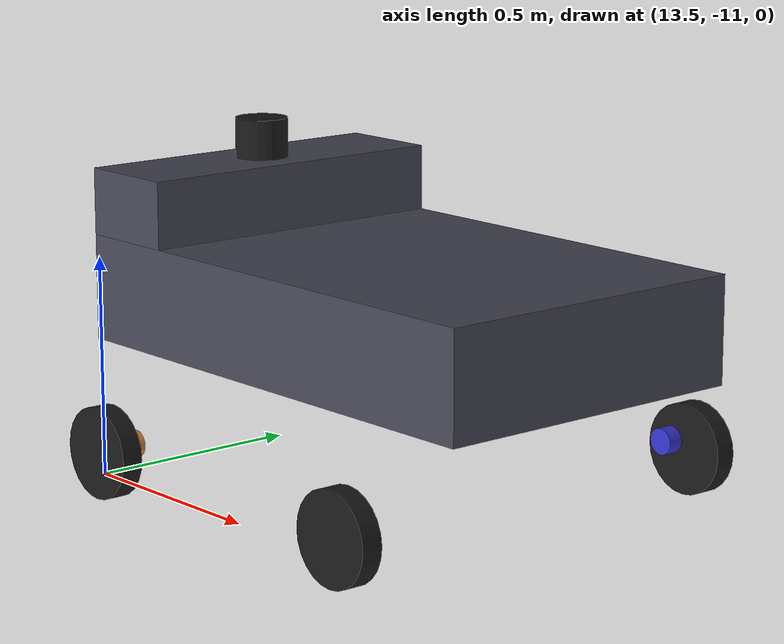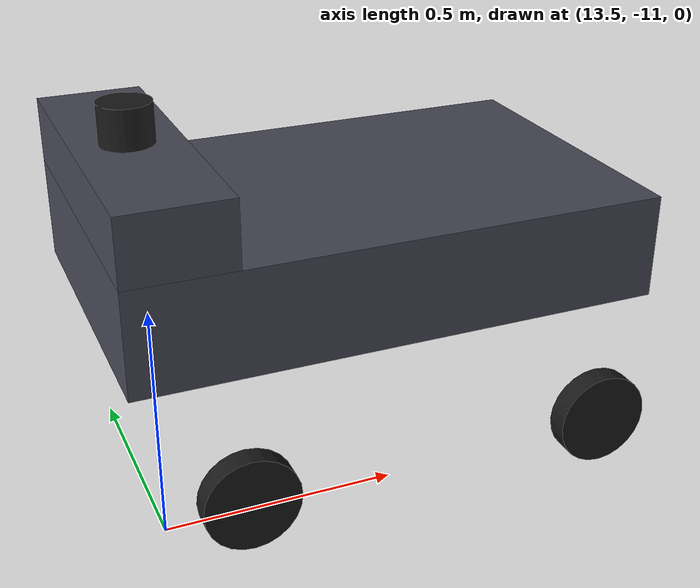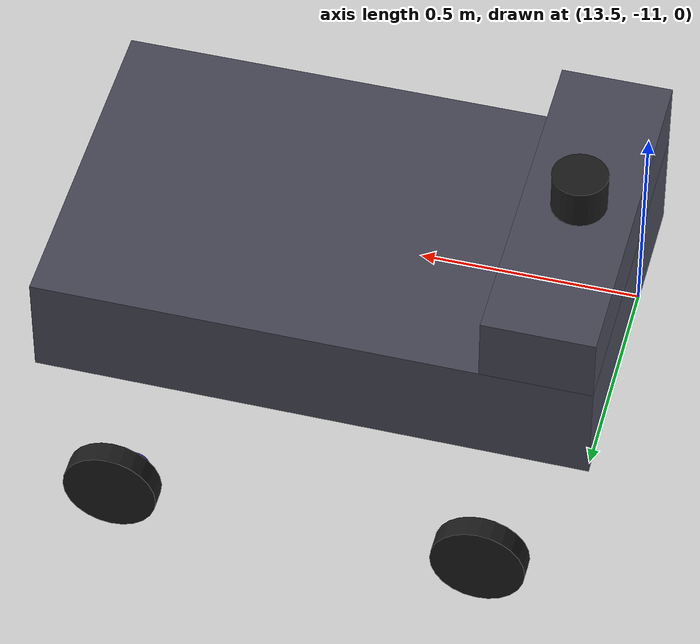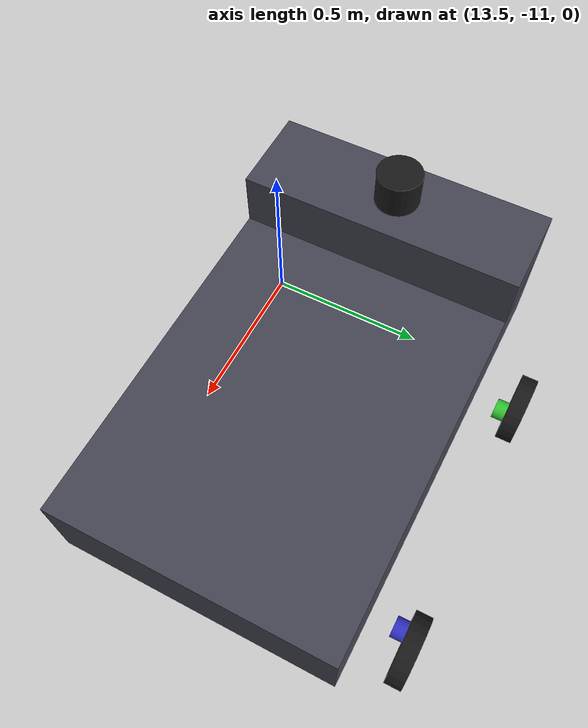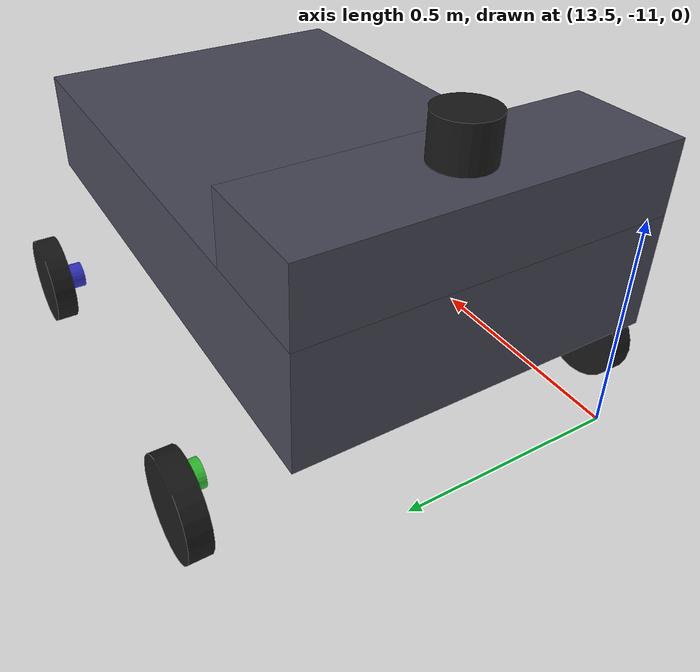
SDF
<sdf version="1.7">
 <world name="world_demo">
  <gravity>0 0 -9.8</gravity>
  <physics type="ode"><max_step_size>0.01</max_step_size><real_time_factor>1</real_time_factor></physics>
  <plugin name="ignition::gazebo::systems::Physics" filename="libignition-gazebo-physics-system.so"/>
  <plugin name="ignition::gazebo::systems::UserCommands" filename="libignition-gazebo-user-commands-system.so"/>
  <plugin name="ignition::gazebo::systems::SceneBroadcaster" filename="libignition-gazebo-scene-broadcaster-system.so"/>
  <plugin name="ignition::gazebo::systems::Imu" filename="ignition-gazebo-imu-system"/>
  <plugin name="ignition::gazebo::systems::Sensors" filename="ignition-gazebo-sensors-system">
   <render_engine>ogre2</render_engine>
  </plugin>
  <scene>
   <ambient>1 1 1 1</ambient>
   <background>0.3 0.7 0.9 1</background>
   <shadows>0</shadows>
   <grid>false</grid>
  </scene>
  <light type="directional" name="sun">
   <cast_shadows>0</cast_shadows>
   <pose>-5 -3 10 0 0 0</pose>
   <diffuse>1 1 1 1</diffuse>
   <specular>1 1 1 1</specular>
   <direction>0 0 -1</direction>
  </light>
  <model name="ground_plane">
   <static>true</static>
   <link name="link">
    <collision name="collision">
     <geometry><plane><normal>0.0 0.0 1</normal><size>1 1</size></plane></geometry>
    </collision>
   </link>
  </model>
  <include>
   <uri>model://independent_steer_vehicle</uri>
   <name>tugbot</name>
   <pose>13.9 -10.6 0.085 0 0 0</pose>
  </include>
 </world>
</sdf>

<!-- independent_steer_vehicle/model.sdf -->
<sdf version="1.9">
  <model name="independent_steer_vehicle">
    <static>false</static>
    <self_collide>false</self_collide>

    <link name="base_link">
      <pose>0 0 0 0 0 0</pose>
      <inertial>
        <mass>43.0</mass>
        <pose>0.155 0 0.3375 0 0 0</pose>
        <inertia>
          <ixx>3.213</ixx>
          <iyy>6.068</iyy>
          <izz>7.541</izz>
          <ixy>0</ixy>
          <ixz>0</ixz>
          <iyz>0</iyz>
        </inertia>
      </inertial>

      <collision name="base_collision">
        <pose>0.155 0 0.3375 0 0 0</pose>
        <geometry>
          <box>
            <size>1.204 0.754 0.239</size>
          </box>
        </geometry>
      </collision>

      <collision name="front_top_block_collision">
        <pose>-0.3266 0 0.532 0 0 0</pose>
        <geometry>
          <box>
            <size>0.2408 0.754 0.15</size>
          </box>
        </geometry>
      </collision>

      <visual name="base_visual">
        <pose>0.155 0 0.3375 0 0 0</pose>
        <geometry>
          <box>
            <size>1.204 0.754 0.239</size>
          </box>
        </geometry>
        <material>
          <ambient>0.2 0.2 0.24 1</ambient>
          <diffuse>0.28 0.28 0.34 1</diffuse>
        </material>
      </visual>

      <visual name="front_top_block_visual">
        <pose>-0.3266 0 0.532 0 0 0</pose>
        <geometry>
          <box>
            <size>0.2408 0.754 0.15</size>
          </box>
        </geometry>
        <material>
          <ambient>0.2 0.2 0.24 1</ambient>
          <diffuse>0.28 0.28 0.34 1</diffuse>
        </material>
      </visual>
    </link>

    <link name="front_right_steer_link">
      <pose>0.523186867142 -0.480000621617 0.033773928446 0 0 0</pose>
      <inertial>
        <mass>0.5</mass>
        <inertia>
          <ixx>0.0005</ixx>
          <iyy>0.0005</iyy>
          <izz>0.0005</izz>
          <ixy>0</ixy>
          <ixz>0</ixz>
          <iyz>0</iyz>
        </inertia>
      </inertial>
      <visual name="front_right_steer_visual">
        <geometry>
          <cylinder>
            <radius>0.03</radius>
            <length>0.08</length>
          </cylinder>
        </geometry>
        <pose>0 0 0 1.57079632679 0 0</pose>
        <material>
          <ambient>0.8 0.2 0.2 1</ambient>
          <diffuse>0.8 0.2 0.2 1</diffuse>
        </material>
      </visual>
    </link>

    <link name="front_left_steer_link">
      <pose>0.522381324934 0.480016900459 0.033780014266 0 0 0</pose>
      <inertial>
        <mass>0.5</mass>
        <inertia>
          <ixx>0.0005</ixx>
          <iyy>0.0005</iyy>
          <izz>0.0005</izz>
          <ixy>0</ixy>
          <ixz>0</ixz>
          <iyz>0</iyz>
        </inertia>
      </inertial>
      <visual name="front_left_steer_visual">
        <geometry>
          <cylinder>
            <radius>0.03</radius>
            <length>0.08</length>
          </cylinder>
        </geometry>
        <pose>0 0 0 1.57079632679 0 0</pose>
        <material>
          <ambient>0.2 0.2 0.8 1</ambient>
          <diffuse>0.2 0.2 0.8 1</diffuse>
        </material>
      </visual>
    </link>

    <link name="rear_right_steer_link">
      <pose>-0.212346960597 -0.480009573301 0.033780413680 0 0 0</pose>
      <inertial>
        <mass>0.5</mass>
        <inertia>
          <ixx>0.0005</ixx>
          <iyy>0.0005</iyy>
          <izz>0.0005</izz>
          <ixy>0</ixy>
          <ixz>0</ixz>
          <iyz>0</iyz>
        </inertia>
      </inertial>
      <visual name="rear_right_steer_visual">
        <geometry>
          <cylinder>
            <radius>0.03</radius>
            <length>0.08</length>
          </cylinder>
        </geometry>
        <pose>0 0 0 1.57079632679 0 0</pose>
        <material>
          <ambient>0.8 0.5 0.2 1</ambient>
          <diffuse>0.8 0.5 0.2 1</diffuse>
        </material>
      </visual>
    </link>

    <link name="rear_left_steer_link">
      <pose>-0.212380878248 0.480009434376 0.032710621540 0 0 0</pose>
      <inertial>
        <mass>0.5</mass>
        <inertia>
          <ixx>0.0005</ixx>
          <iyy>0.0005</iyy>
          <izz>0.0005</izz>
          <ixy>0</ixy>
          <ixz>0</ixz>
          <iyz>0</iyz>
        </inertia>
      </inertial>
      <visual name="rear_left_steer_visual">
        <geometry>
          <cylinder>
            <radius>0.03</radius>
            <length>0.08</length>
          </cylinder>
        </geometry>
        <pose>0 0 0 1.57079632679 0 0</pose>
        <material>
          <ambient>0.2 0.8 0.2 1</ambient>
          <diffuse>0.2 0.8 0.2 1</diffuse>
        </material>
      </visual>
    </link>

    <link name="front_right_wheel">
      <pose>0.558255699202 -0.500000000000 0.018054512070 0 0 0</pose>
      <inertial>
        <mass>5.0</mass>
        <inertia>
          <ixx>0.02834</ixx>
          <iyy>0.02834</iyy>
          <izz>0.02635</izz>
          <ixy>0</ixy>
          <ixz>0</ixz>
          <iyz>0</iyz>
        </inertia>
      </inertial>
      <collision name="front_right_wheel_collision">
        <pose>0 0 0 1.57079632679 0 0</pose>
        <geometry>
          <cylinder>
            <radius>0.103</radius>
            <length>0.0488</length>
          </cylinder>
        </geometry>
        <surface>
          <friction>
            <ode>
              <mu>5.0</mu>
              <mu2>5.0</mu2>
              <slip1>0.0</slip1>
              <slip2>0.0</slip2>
            </ode>
          </friction>
        </surface>
      </collision>
      <visual name="front_right_wheel_visual">
        <pose>0 0 0 1.57079632679 0 0</pose>
        <geometry>
          <cylinder>
            <radius>0.103</radius>
            <length>0.0488</length>
          </cylinder>
        </geometry>
        <material>
          <ambient>0.08 0.08 0.08 1</ambient>
          <diffuse>0.1 0.1 0.1 1</diffuse>
        </material>
      </visual>
    </link>

    <link name="front_left_wheel">
      <pose>0.558243305372 0.500094888084 0.018048959469 0 0 0</pose>
      <inertial>
        <mass>5.0</mass>
        <inertia>
          <ixx>0.02834</ixx>
          <iyy>0.02834</iyy>
          <izz>0.02635</izz>
          <ixy>0</ixy>
          <ixz>0</ixz>
          <iyz>0</iyz>
        </inertia>
      </inertial>
      <collision name="front_left_wheel_collision">
        <pose>0 0 0 1.57079632679 0 0</pose>
        <geometry>
          <cylinder>
            <radius>0.103</radius>
            <length>0.0488</length>
          </cylinder>
        </geometry>
        <surface>
          <friction>
            <ode>
              <mu>5.0</mu>
              <mu2>5.0</mu2>
              <slip1>0.0</slip1>
              <slip2>0.0</slip2>
            </ode>
          </friction>
        </surface>
      </collision>
      <visual name="front_left_wheel_visual">
        <pose>0 0 0 1.57079632679 0 0</pose>
        <geometry>
          <cylinder>
            <radius>0.103</radius>
            <length>0.0488</length>
          </cylinder>
        </geometry>
        <material>
          <ambient>0.08 0.08 0.08 1</ambient>
          <diffuse>0.1 0.1 0.1 1</diffuse>
        </material>
      </visual>
    </link>

    <link name="rear_right_wheel">
      <pose>-0.248243394788 -0.500000000000 0.018048958471 0 0 0</pose>
      <inertial>
        <mass>5.0</mass>
        <inertia>
          <ixx>0.02834</ixx>
          <iyy>0.02834</iyy>
          <izz>0.02635</izz>
          <ixy>0</ixy>
          <ixz>0</ixz>
          <iyz>0</iyz>
        </inertia>
      </inertial>
      <collision name="rear_right_wheel_collision">
        <pose>0 0 0 1.57079632679 0 0</pose>
        <geometry>
          <cylinder>
            <radius>0.103</radius>
            <length>0.0488</length>
          </cylinder>
        </geometry>
        <surface>
          <friction>
            <ode>
              <mu>5.0</mu>
              <mu2>5.0</mu2>
              <slip1>0.0</slip1>
              <slip2>0.0</slip2>
            </ode>
          </friction>
        </surface>
      </collision>
      <visual name="rear_right_wheel_visual">
        <pose>0 0 0 1.57079632679 0 0</pose>
        <geometry>
          <cylinder>
            <radius>0.103</radius>
            <length>0.0488</length>
          </cylinder>
        </geometry>
        <material>
          <ambient>0.08 0.08 0.08 1</ambient>
          <diffuse>0.1 0.1 0.1 1</diffuse>
        </material>
      </visual>
    </link>

    <link name="rear_left_wheel">
      <pose>-0.247531564263 0.500009437666 0.017175153225 0 0 0</pose>
      <inertial>
        <mass>5.0</mass>
        <inertia>
          <ixx>0.02834</ixx>
          <iyy>0.02834</iyy>
          <izz>0.02635</izz>
          <ixy>0</ixy>
          <ixz>0</ixz>
          <iyz>0</iyz>
        </inertia>
      </inertial>
      <collision name="rear_left_wheel_collision">
        <pose>0 0 0 1.57079632679 0 0</pose>
        <geometry>
          <cylinder>
            <radius>0.103</radius>
            <length>0.0488</length>
          </cylinder>
        </geometry>
        <surface>
          <friction>
            <ode>
              <mu>5.0</mu>
              <mu2>5.0</mu2>
              <slip1>0.0</slip1>
              <slip2>0.0</slip2>
            </ode>
          </friction>
        </surface>
      </collision>
      <visual name="rear_left_wheel_visual">
        <pose>0 0 0 1.57079632679 0 0</pose>
        <geometry>
          <cylinder>
            <radius>0.103</radius>
            <length>0.0488</length>
          </cylinder>
        </geometry>
        <material>
          <ambient>0.08 0.08 0.08 1</ambient>
          <diffuse>0.1 0.1 0.1 1</diffuse>
        </material>
      </visual>
    </link>

    <link name="scan_omni">
      <pose>-0.3266 0 0.652 0 0 0</pose>
      <inertial>
        <mass>0.2</mass>
        <inertia>
          <ixx>0.0002</ixx>
          <iyy>0.0002</iyy>
          <izz>0.0002</izz>
          <ixy>0</ixy>
          <ixz>0</ixz>
          <iyz>0</iyz>
        </inertia>
      </inertial>
      <collision name="scan_omni_collision">
        <geometry>
          <cylinder>
            <radius>0.06</radius>
            <length>0.09</length>
          </cylinder>
        </geometry>
      </collision>
      <visual name="scan_omni_visual">
        <geometry>
          <cylinder>
            <radius>0.06</radius>
            <length>0.09</length>
          </cylinder>
        </geometry>
        <material>
          <ambient>0.1 0.1 0.1 1</ambient>
          <diffuse>0.1 0.1 0.1 1</diffuse>
        </material>
      </visual>
      <sensor name="scan_omni" type="gpu_lidar">
        <update_rate>15</update_rate>
        <topic>scan_omni</topic>
        <gz_frame_id>scan_omni</gz_frame_id>
        <lidar>
          <scan>
            <horizontal>
              <samples>720</samples>
              <resolution>1</resolution>
              <min_angle>-3.14159265359</min_angle>
              <max_angle>3.14159265359</max_angle>
            </horizontal>
            <vertical>
              <samples>1</samples>
              <resolution>1</resolution>
              <min_angle>0</min_angle>
              <max_angle>0</max_angle>
            </vertical>
          </scan>
          <range>
            <min>0.05</min>
            <max>30.0</max>
            <resolution>0.01</resolution>
          </range>
        </lidar>
        <always_on>true</always_on>
        <visualize>true</visualize>
      </sensor>
    </link>

    <joint name="front_right_steer_joint" type="revolute">
      <parent>base_link</parent>
      <child>front_right_steer_link</child>
      <axis>
        <xyz>0 0 1</xyz>
        <limit>
          <lower>-3.14159265359</lower>
          <upper>3.14159265359</upper>
          <effort>80</effort>
          <velocity>4.0</velocity>
        </limit>
        <dynamics>
          <damping>2.0</damping>
          <friction>0.2</friction>
          <spring_reference>0.0</spring_reference>
          <spring_stiffness>0.0</spring_stiffness>
        </dynamics>
      </axis>
    </joint>

    <joint name="front_left_steer_joint" type="revolute">
      <parent>base_link</parent>
      <child>front_left_steer_link</child>
      <axis>
        <xyz>0 0 1</xyz>
        <limit>
          <lower>-3.14159265359</lower>
          <upper>3.14159265359</upper>
          <effort>80</effort>
          <velocity>4.0</velocity>
        </limit>
        <dynamics>
          <damping>2.0</damping>
          <friction>0.2</friction>
          <spring_reference>0.0</spring_reference>
          <spring_stiffness>0.0</spring_stiffness>
        </dynamics>
      </axis>
    </joint>

    <joint name="rear_right_steer_joint" type="revolute">
      <parent>base_link</parent>
      <child>rear_right_steer_link</child>
      <axis>
        <xyz>0 0 1</xyz>
        <limit>
          <lower>-3.14159265359</lower>
          <upper>3.14159265359</upper>
          <effort>80</effort>
          <velocity>4.0</velocity>
        </limit>
        <dynamics>
          <damping>2.0</damping>
          <friction>0.2</friction>
          <spring_reference>0.0</spring_reference>
          <spring_stiffness>0.0</spring_stiffness>
        </dynamics>
      </axis>
    </joint>

    <joint name="rear_left_steer_joint" type="revolute">
      <parent>base_link</parent>
      <child>rear_left_steer_link</child>
      <axis>
        <xyz>0 0 1</xyz>
        <limit>
          <lower>-3.14159265359</lower>
          <upper>3.14159265359</upper>
          <effort>80</effort>
          <velocity>4.0</velocity>
        </limit>
        <dynamics>
          <damping>2.0</damping>
          <friction>0.2</friction>
          <spring_reference>0.0</spring_reference>
          <spring_stiffness>0.0</spring_stiffness>
        </dynamics>
      </axis>
    </joint>

    <joint name="front_right_wheel_joint" type="revolute">
      <parent>front_right_steer_link</parent>
      <child>front_right_wheel</child>
      <axis>
        <xyz>0 1 0</xyz>
        <limit>
          <lower>-1.79769e+308</lower>
          <upper>1.79769e+308</upper>
          <effort>120</effort>
          <velocity>40</velocity>
        </limit>
        <dynamics>
          <friction>0.2</friction>
        </dynamics>
      </axis>
    </joint>

    <joint name="front_left_wheel_joint" type="revolute">
      <parent>front_left_steer_link</parent>
      <child>front_left_wheel</child>
      <axis>
        <xyz>0 1 0</xyz>
        <limit>
          <lower>-1.79769e+308</lower>
          <upper>1.79769e+308</upper>
          <effort>120</effort>
          <velocity>40</velocity>
        </limit>
        <dynamics>
          <friction>0.2</friction>
        </dynamics>
      </axis>
    </joint>

    <joint name="rear_right_wheel_joint" type="revolute">
      <parent>rear_right_steer_link</parent>
      <child>rear_right_wheel</child>
      <axis>
        <xyz>0 1 0</xyz>
        <limit>
          <lower>-1.79769e+308</lower>
          <upper>1.79769e+308</upper>
          <effort>120</effort>
          <velocity>40</velocity>
        </limit>
        <dynamics>
          <friction>0.2</friction>
        </dynamics>
      </axis>
    </joint>

    <joint name="rear_left_wheel_joint" type="revolute">
      <parent>rear_left_steer_link</parent>
      <child>rear_left_wheel</child>
      <axis>
        <xyz>0 1 0</xyz>
        <limit>
          <lower>-1.79769e+308</lower>
          <upper>1.79769e+308</upper>
          <effort>120</effort>
          <velocity>40</velocity>
        </limit>
        <dynamics>
          <friction>0.2</friction>
        </dynamics>
      </axis>
    </joint>

    <joint name="scan_omni_joint" type="fixed">
      <parent>base_link</parent>
      <child>scan_omni</child>
    </joint>

    <plugin filename="gz-sim-joint-position-controller-system" name="gz::sim::systems::JointPositionController">
      <joint_name>front_right_steer_joint</joint_name>
      <p_gain>120.0</p_gain>
      <i_gain>0.5</i_gain>
      <d_gain>8.0</d_gain>
      <cmd_max>200</cmd_max>
      <cmd_min>-200</cmd_min>
    </plugin>

    <plugin filename="gz-sim-joint-position-controller-system" name="gz::sim::systems::JointPositionController">
      <joint_name>front_left_steer_joint</joint_name>
      <p_gain>120.0</p_gain>
      <i_gain>0.5</i_gain>
      <d_gain>8.0</d_gain>
      <cmd_max>200</cmd_max>
      <cmd_min>-200</cmd_min>
    </plugin>

    <plugin filename="gz-sim-joint-position-controller-system" name="gz::sim::systems::JointPositionController">
      <joint_name>rear_right_steer_joint</joint_name>
      <p_gain>120.0</p_gain>
      <i_gain>0.5</i_gain>
      <d_gain>8.0</d_gain>
      <cmd_max>200</cmd_max>
      <cmd_min>-200</cmd_min>
    </plugin>

    <plugin filename="gz-sim-joint-position-controller-system" name="gz::sim::systems::JointPositionController">
      <joint_name>rear_left_steer_joint</joint_name>
      <p_gain>120.0</p_gain>
      <i_gain>0.5</i_gain>
      <d_gain>8.0</d_gain>
      <cmd_max>200</cmd_max>
      <cmd_min>-200</cmd_min>
    </plugin>

    <plugin filename="gz-sim-joint-controller-system" name="gz::sim::systems::JointController">
      <joint_name>front_right_wheel_joint</joint_name>
      <initial_velocity>0.0</initial_velocity>
    </plugin>

    <plugin filename="gz-sim-joint-controller-system" name="gz::sim::systems::JointController">
      <joint_name>front_left_wheel_joint</joint_name>
      <initial_velocity>0.0</initial_velocity>
    </plugin>

    <plugin filename="gz-sim-joint-controller-system" name="gz::sim::systems::JointController">
      <joint_name>rear_right_wheel_joint</joint_name>
      <initial_velocity>0.0</initial_velocity>
    </plugin>

    <plugin filename="gz-sim-joint-controller-system" name="gz::sim::systems::JointController">
      <joint_name>rear_left_wheel_joint</joint_name>
      <initial_velocity>0.0</initial_velocity>
    </plugin>

    <plugin filename="gz-sim-joint-state-publisher-system" name="gz::sim::systems::JointStatePublisher">
    </plugin>

    <plugin filename="gz-sim-odometry-publisher-system" name="gz::sim::systems::OdometryPublisher">
      <dimensions>3</dimensions>
      <odom_publish_frequency>30</odom_publish_frequency>
    </plugin>
  </model>
</sdf>
